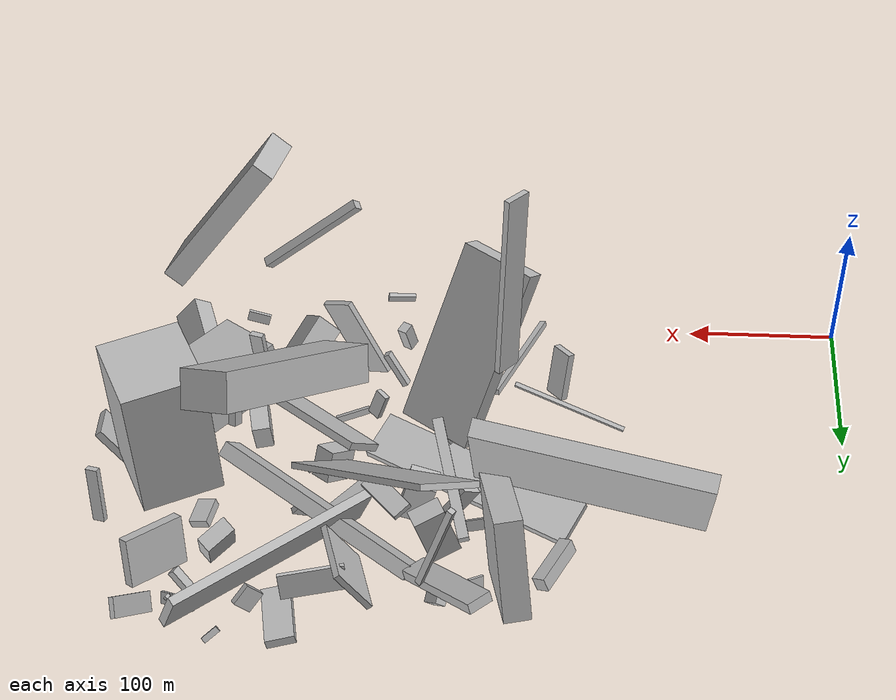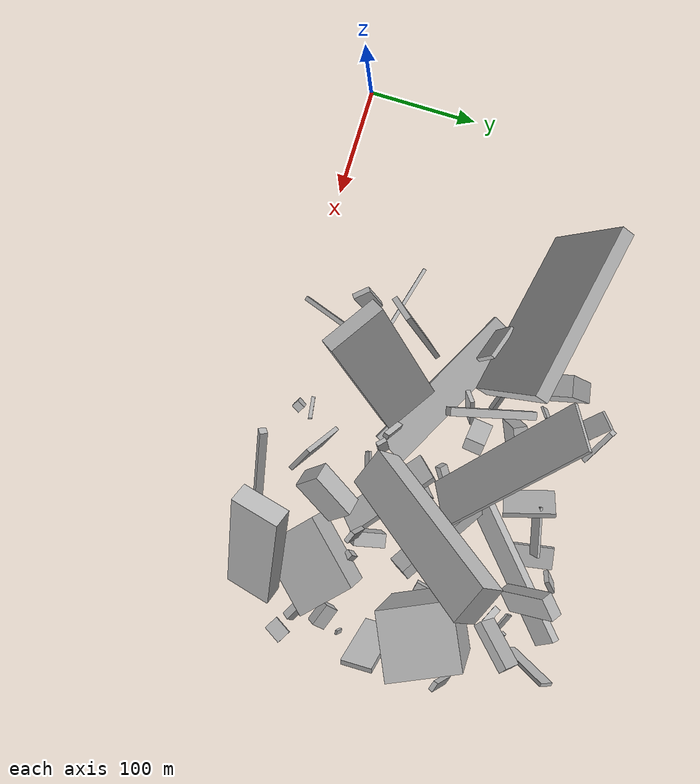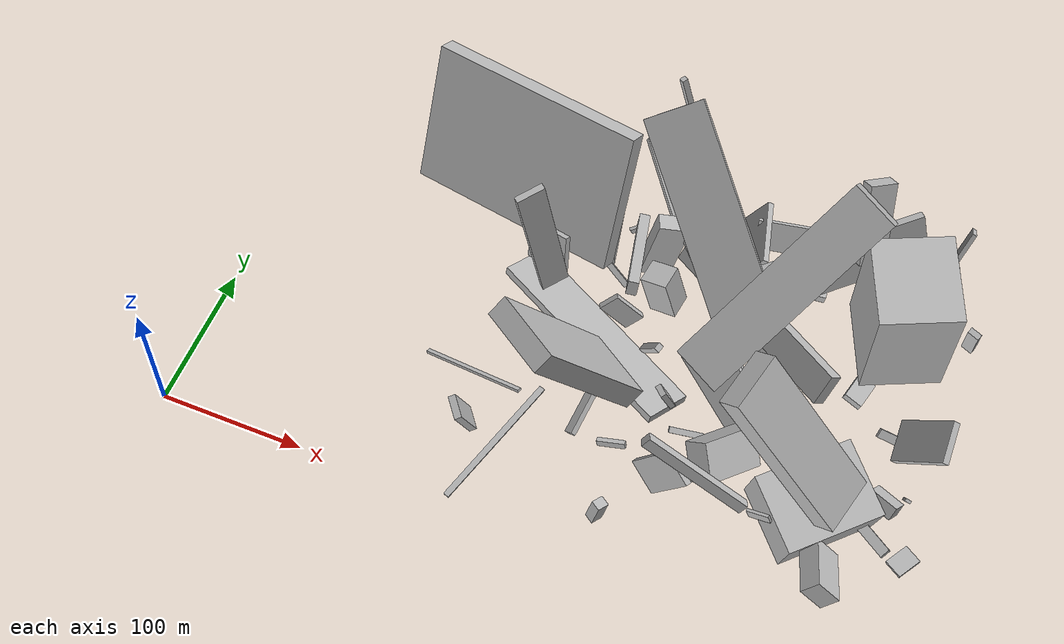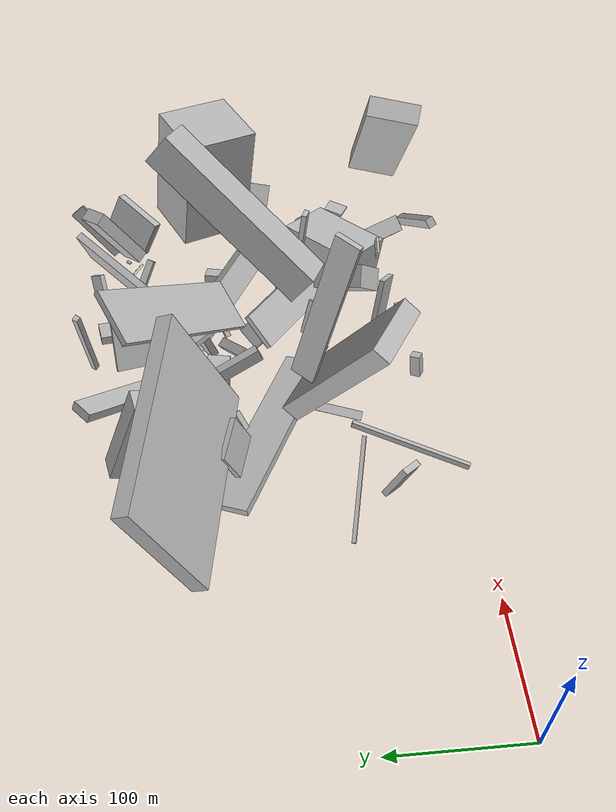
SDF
<sdf version="1.6">
 <world name="default">
  <model name="building_1">
   <static>0</static>
   <pose>401.5523927112124 54.036079059480755 28.276010431836145 -1.6262827580335213 -1.3107580423392562 -0.7069547826566642</pose>
   <link name="link">
    <gravity>0</gravity>
    <pose>0 0 33.5 0 0 0</pose>
    <collision name="collision"><geometry><box><size>34 52 67</size></box></geometry></collision>
    <visual name="visual">
     <cast_shadows>0</cast_shadows>
     <geometry><box><size>34 52 67</size></box></geometry>
     <material>
      <script>
       <uri>model://HANNAS_wall/materials/scripts</uri>
       <uri>model://HANNAS_wall/materials/textures</uri>
       <name>vrc/HANNAS_wall</name>
      </script>
     </material>
    </visual>
   </link>
  </model>
  <model name="building_4">
   <static>0</static>
   <pose>228.17869012197627 125.55638589533686 99.13003201223846 0.1654139263675401 0.09466595474658478 -0.6914889241852872</pose>
   <link name="link">
    <gravity>0</gravity>
    <pose>0 0 64.0 0 0 0</pose>
    <collision name="collision"><geometry><box><size>4 18 128</size></box></geometry></collision>
    <visual name="visual">
     <cast_shadows>0</cast_shadows>
     <geometry><box><size>4 18 128</size></box></geometry>
     <material>
      <script>
       <uri>model://HANNAS_wall/materials/scripts</uri>
       <uri>model://HANNAS_wall/materials/textures</uri>
       <name>vrc/HANNAS_wall</name>
      </script>
     </material>
    </visual>
   </link>
  </model>
  <model name="building_6">
   <static>0</static>
   <pose>407.4585912472862 150.6241460101338 39.54069528543751 1.7625428357951811 0.8658357117565957 -2.0084334795983896</pose>
   <link name="link">
    <gravity>0</gravity>
    <pose>0 0 75.0 0 0 0</pose>
    <collision name="collision"><geometry><box><size>22 10 150</size></box></geometry></collision>
    <visual name="visual">
     <cast_shadows>0</cast_shadows>
     <geometry><box><size>22 10 150</size></box></geometry>
     <material>
      <script>
       <uri>model://HANNAS_wall/materials/scripts</uri>
       <uri>model://HANNAS_wall/materials/textures</uri>
       <name>vrc/HANNAS_wall</name>
      </script>
     </material>
    </visual>
   </link>
  </model>
  <model name="building_8">
   <static>0</static>
   <pose>255.84433798821124 95.35408352351342 83.95009106457736 2.1371224104064597 -0.032799270551776775 -0.5828597156465631</pose>
   <link name="link">
    <gravity>0</gravity>
    <pose>0 0 7.5 0 0 0</pose>
    <collision name="collision"><geometry><box><size>51 126 15</size></box></geometry></collision>
    <visual name="visual">
     <cast_shadows>0</cast_shadows>
     <geometry><box><size>51 126 15</size></box></geometry>
     <material>
      <script>
       <uri>model://HANNAS_wall/materials/scripts</uri>
       <uri>model://HANNAS_wall/materials/textures</uri>
       <name>vrc/HANNAS_wall</name>
      </script>
     </material>
    </visual>
   </link>
  </model>
  <model name="building_22">
   <static>0</static>
   <pose>246.83429743823993 147.05973577493927 8.956918842114668 -0.22944183199776358 -0.008992836488864609 -0.48987932831853437</pose>
   <link name="link">
    <gravity>0</gravity>
    <pose>0 0 3.0 0 0 0</pose>
    <collision name="collision"><geometry><box><size>150 32 6</size></box></geometry></collision>
    <visual name="visual">
     <cast_shadows>0</cast_shadows>
     <geometry><box><size>150 32 6</size></box></geometry>
     <material>
      <script>
       <uri>model://HANNAS_wall/materials/scripts</uri>
       <uri>model://HANNAS_wall/materials/textures</uri>
       <name>vrc/HANNAS_wall</name>
      </script>
     </material>
    </visual>
   </link>
  </model>
  <model name="building_25">
   <static>0</static>
   <pose>318.8126764333156 219.92526281814506 101.15092016447481 2.190576327675683 -0.7795607426135756 -1.5544811991809708</pose>
   <link name="link">
    <gravity>0</gravity>
    <pose>0 0 21.0 0 0 0</pose>
    <collision name="collision"><geometry><box><size>4 150 42</size></box></geometry></collision>
    <visual name="visual">
     <cast_shadows>0</cast_shadows>
     <geometry><box><size>4 150 42</size></box></geometry>
     <material>
      <script>
       <uri>model://HANNAS_wall/materials/scripts</uri>
       <uri>model://HANNAS_wall/materials/textures</uri>
       <name>vrc/HANNAS_wall</name>
      </script>
     </material>
    </visual>
   </link>
  </model>
  <model name="building_33">
   <static>0</static>
   <pose>455.7886217580594 102.60628199560767 19.544798393776755 -1.6280594650465947 0.8171888531796426 -1.960991191095987</pose>
   <link name="link">
    <gravity>0</gravity>
    <pose>0 0 10.0 0 0 0</pose>
    <collision name="collision"><geometry><box><size>9 14 20</size></box></geometry></collision>
    <visual name="visual">
     <cast_shadows>0</cast_shadows>
     <geometry><box><size>9 14 20</size></box></geometry>
     <material>
      <script>
       <uri>model://HANNAS_wall/materials/scripts</uri>
       <uri>model://HANNAS_wall/materials/textures</uri>
       <name>vrc/HANNAS_wall</name>
      </script>
     </material>
    </visual>
   </link>
  </model>
  <model name="building_35">
   <static>0</static>
   <pose>322.10760045974797 240.39454420777062 37.82772973732747 -2.9354468873814645 -1.0583733223327632 0.09401110540814224</pose>
   <link name="link">
    <gravity>0</gravity>
    <pose>0 0 2.0 0 0 0</pose>
    <collision name="collision"><geometry><box><size>39 44 4</size></box></geometry></collision>
    <visual name="visual">
     <cast_shadows>0</cast_shadows>
     <geometry><box><size>39 44 4</size></box></geometry>
     <material>
      <script>
       <uri>model://HANNAS_wall/materials/scripts</uri>
       <uri>model://HANNAS_wall/materials/textures</uri>
       <name>vrc/HANNAS_wall</name>
      </script>
     </material>
    </visual>
   </link>
  </model>
  <model name="building_44">
   <static>0</static>
   <pose>437.65455058654993 187.28184264099127 62.38248355883496 0.00261766738097327 -0.10834398933520083 2.0069209695802566</pose>
   <link name="link">
    <gravity>0</gravity>
    <pose>0 0 45.5 0 0 0</pose>
    <collision name="collision"><geometry><box><size>57 52 91</size></box></geometry></collision>
    <visual name="visual">
     <cast_shadows>0</cast_shadows>
     <geometry><box><size>57 52 91</size></box></geometry>
     <material>
      <script>
       <uri>model://HANNAS_wall/materials/scripts</uri>
       <uri>model://HANNAS_wall/materials/textures</uri>
       <name>vrc/HANNAS_wall</name>
      </script>
     </material>
    </visual>
   </link>
  </model>
  <model name="building_47">
   <static>0</static>
   <pose>262.483425975196 173.59603297082438 18.35967282798807 2.906843778262975 0.9103403238811496 0.31924870117357085</pose>
   <link name="link">
    <gravity>0</gravity>
    <pose>0 0 7.5 0 0 0</pose>
    <collision name="collision"><geometry><box><size>29 4 15</size></box></geometry></collision>
    <visual name="visual">
     <cast_shadows>0</cast_shadows>
     <geometry><box><size>29 4 15</size></box></geometry>
     <material>
      <script>
       <uri>model://HANNAS_wall/materials/scripts</uri>
       <uri>model://HANNAS_wall/materials/textures</uri>
       <name>vrc/HANNAS_wall</name>
      </script>
     </material>
    </visual>
   </link>
  </model>
  <model name="building_48">
   <static>0</static>
   <pose>343.7332078227455 115.50055658258998 30.54460754928127 -0.12066962288144499 -0.8261246692175795 -2.166259265821095</pose>
   <link name="link">
    <gravity>0</gravity>
    <pose>0 0 15.0 0 0 0</pose>
    <collision name="collision"><geometry><box><size>5 83 30</size></box></geometry></collision>
    <visual name="visual">
     <cast_shadows>0</cast_shadows>
     <geometry><box><size>5 83 30</size></box></geometry>
     <material>
      <script>
       <uri>model://HANNAS_wall/materials/scripts</uri>
       <uri>model://HANNAS_wall/materials/textures</uri>
       <name>vrc/HANNAS_wall</name>
      </script>
     </material>
    </visual>
   </link>
  </model>
  <model name="building_54">
   <static>0</static>
   <pose>426.0401064589801 238.5923996086079 11.463200420233129 -2.4110656070231133 0.12562955732534437 -2.035138156353231</pose>
   <link name="link">
    <gravity>0</gravity>
    <pose>0 0 3.0 0 0 0</pose>
    <collision name="collision"><geometry><box><size>6 24 6</size></box></geometry></collision>
    <visual name="visual">
     <cast_shadows>0</cast_shadows>
     <geometry><box><size>6 24 6</size></box></geometry>
     <material>
      <script>
       <uri>model://HANNAS_wall/materials/scripts</uri>
       <uri>model://HANNAS_wall/materials/textures</uri>
       <name>vrc/HANNAS_wall</name>
      </script>
     </material>
    </visual>
   </link>
  </model>
  <model name="building_62">
   <static>0</static>
   <pose>385.70483982682134 110.84927908007953 60.38797494655334 0.0726300629908835 0.12162989719234074 -0.37731992142962223</pose>
   <link name="link">
    <gravity>0</gravity>
    <pose>0 0 21.0 0 0 0</pose>
    <collision name="collision"><geometry><box><size>9 4 42</size></box></geometry></collision>
    <visual name="visual">
     <cast_shadows>0</cast_shadows>
     <geometry><box><size>9 4 42</size></box></geometry>
     <material>
      <script>
       <uri>model://HANNAS_wall/materials/scripts</uri>
       <uri>model://HANNAS_wall/materials/textures</uri>
       <name>vrc/HANNAS_wall</name>
      </script>
     </material>
    </visual>
   </link>
  </model>
  <model name="building_63">
   <static>0</static>
   <pose>246.52924225113617 195.55076932814498 101.18943290998635 1.646576446952433 -0.43119676823016745 -1.80322904892218</pose>
   <link name="link">
    <gravity>0</gravity>
    <pose>0 0 75.0 0 0 0</pose>
    <collision name="collision"><geometry><box><size>12 99 150</size></box></geometry></collision>
    <visual name="visual">
     <cast_shadows>0</cast_shadows>
     <geometry><box><size>12 99 150</size></box></geometry>
     <material>
      <script>
       <uri>model://HANNAS_wall/materials/scripts</uri>
       <uri>model://HANNAS_wall/materials/textures</uri>
       <name>vrc/HANNAS_wall</name>
      </script>
     </material>
    </visual>
   </link>
  </model>
  <model name="building_64">
   <static>0</static>
   <pose>204.30791801875387 169.3236426557614 41.128675295167426 -0.33512342265169454 -0.21341822334581886 -0.31619897448257156</pose>
   <link name="link">
    <gravity>0</gravity>
    <pose>0 0 14.5 0 0 0</pose>
    <collision name="collision"><geometry><box><size>32 4 29</size></box></geometry></collision>
    <visual name="visual">
     <cast_shadows>0</cast_shadows>
     <geometry><box><size>32 4 29</size></box></geometry>
     <material>
      <script>
       <uri>model://HANNAS_wall/materials/scripts</uri>
       <uri>model://HANNAS_wall/materials/textures</uri>
       <name>vrc/HANNAS_wall</name>
      </script>
     </material>
    </visual>
   </link>
  </model>
  <model name="building_66">
   <static>0</static>
   <pose>301.60683240875255 201.1517540891328 60.749078507138464 -3.134523923734483 -0.2785828495704188 -2.4146996423829132</pose>
   <link name="link">
    <gravity>0</gravity>
    <pose>0 0 2.0 0 0 0</pose>
    <collision name="collision"><geometry><box><size>13 34 4</size></box></geometry></collision>
    <visual name="visual">
     <cast_shadows>0</cast_shadows>
     <geometry><box><size>13 34 4</size></box></geometry>
     <material>
      <script>
       <uri>model://HANNAS_wall/materials/scripts</uri>
       <uri>model://HANNAS_wall/materials/textures</uri>
       <name>vrc/HANNAS_wall</name>
      </script>
     </material>
    </visual>
   </link>
  </model>
  <model name="building_68">
   <static>0</static>
   <pose>240.70507803926466 192.09927568786836 22.423612211311614 1.0441341752526783 -0.5906981287490739 2.816656091166284</pose>
   <link name="link">
    <gravity>0</gravity>
    <pose>0 0 2.0 0 0 0</pose>
    <collision name="collision"><geometry><box><size>29 7 4</size></box></geometry></collision>
    <visual name="visual">
     <cast_shadows>0</cast_shadows>
     <geometry><box><size>29 7 4</size></box></geometry>
     <material>
      <script>
       <uri>model://HANNAS_wall/materials/scripts</uri>
       <uri>model://HANNAS_wall/materials/textures</uri>
       <name>vrc/HANNAS_wall</name>
      </script>
     </material>
    </visual>
   </link>
  </model>
  <model name="building_71">
   <static>0</static>
   <pose>332.2096381563065 109.97532413309195 82.76106830686967 0.9429857392917886 -0.3257920536015377 2.755988557222945</pose>
   <link name="link">
    <gravity>0</gravity>
    <pose>0 0 75.0 0 0 0</pose>
    <collision name="collision"><geometry><box><size>34 25 150</size></box></geometry></collision>
    <visual name="visual">
     <cast_shadows>0</cast_shadows>
     <geometry><box><size>34 25 150</size></box></geometry>
     <material>
      <script>
       <uri>model://HANNAS_wall/materials/scripts</uri>
       <uri>model://HANNAS_wall/materials/textures</uri>
       <name>vrc/HANNAS_wall</name>
      </script>
     </material>
    </visual>
   </link>
  </model>
  <model name="building_79">
   <static>0</static>
   <pose>444.4564148594882 45.1613883228408 103.38515640867823 -0.15334966617143608 0.5729789617016624 2.830693427702016</pose>
   <link name="link">
    <gravity>0</gravity>
    <pose>0 0 60.0 0 0 0</pose>
    <collision name="collision"><geometry><box><size>15 37 120</size></box></geometry></collision>
    <visual name="visual">
     <cast_shadows>0</cast_shadows>
     <geometry><box><size>15 37 120</size></box></geometry>
     <material>
      <script>
       <uri>model://HANNAS_wall/materials/scripts</uri>
       <uri>model://HANNAS_wall/materials/textures</uri>
       <name>vrc/HANNAS_wall</name>
      </script>
     </material>
    </visual>
   </link>
  </model>
  <model name="building_88">
   <static>0</static>
   <pose>456.3463042884102 259.2965416473673 58.69544090817611 2.2071033719061735 -1.152525604051407 -1.3765216476520516</pose>
   <link name="link">
    <gravity>0</gravity>
    <pose>0 0 21.0 0 0 0</pose>
    <collision name="collision"><geometry><box><size>32 7 42</size></box></geometry></collision>
    <visual name="visual">
     <cast_shadows>0</cast_shadows>
     <geometry><box><size>32 7 42</size></box></geometry>
     <material>
      <script>
       <uri>model://HANNAS_wall/materials/scripts</uri>
       <uri>model://HANNAS_wall/materials/textures</uri>
       <name>vrc/HANNAS_wall</name>
      </script>
     </material>
    </visual>
   </link>
  </model>
  <model name="building_89">
   <static>0</static>
   <pose>342.25140812685754 101.60179613858372 14.435974471599081 -1.3485258826676871 -0.4761052619405995 1.7334654703235495</pose>
   <link name="link">
    <gravity>0</gravity>
    <pose>0 0 11.5 0 0 0</pose>
    <collision name="collision"><geometry><box><size>4 4 23</size></box></geometry></collision>
    <visual name="visual">
     <cast_shadows>0</cast_shadows>
     <geometry><box><size>4 4 23</size></box></geometry>
     <material>
      <script>
       <uri>model://HANNAS_wall/materials/scripts</uri>
       <uri>model://HANNAS_wall/materials/textures</uri>
       <name>vrc/HANNAS_wall</name>
      </script>
     </material>
    </visual>
   </link>
  </model>
  <model name="building_90">
   <static>0</static>
   <pose>375.2456861172891 234.0198272110953 39.999909392299486 -2.912081252389361 1.2014815166298745 -0.6362682034279783</pose>
   <link name="link">
    <gravity>0</gravity>
    <pose>0 0 3.0 0 0 0</pose>
    <collision name="collision"><geometry><box><size>36 150 6</size></box></geometry></collision>
    <visual name="visual">
     <cast_shadows>0</cast_shadows>
     <geometry><box><size>36 150 6</size></box></geometry>
     <material>
      <script>
       <uri>model://HANNAS_wall/materials/scripts</uri>
       <uri>model://HANNAS_wall/materials/textures</uri>
       <name>vrc/HANNAS_wall</name>
      </script>
     </material>
    </visual>
   </link>
  </model>
  <model name="building_91">
   <static>0</static>
   <pose>219.94579322952325 255.52894919669794 55.923452049077284 1.9263853605745411 0.03474488821453532 0.19867803928889713</pose>
   <link name="link">
    <gravity>0</gravity>
    <pose>0 0 31.5 0 0 0</pose>
    <collision name="collision"><geometry><box><size>18 73 63</size></box></geometry></collision>
    <visual name="visual">
     <cast_shadows>0</cast_shadows>
     <geometry><box><size>18 73 63</size></box></geometry>
     <material>
      <script>
       <uri>model://HANNAS_wall/materials/scripts</uri>
       <uri>model://HANNAS_wall/materials/textures</uri>
       <name>vrc/HANNAS_wall</name>
      </script>
     </material>
    </visual>
   </link>
  </model>
  <model name="building_92">
   <static>0</static>
   <pose>401.903777154066 254.43615798046574 84.09249106973095 2.033854022043411 -0.2708171890643756 -2.4038582705777247</pose>
   <link name="link">
    <gravity>0</gravity>
    <pose>0 0 5.0 0 0 0</pose>
    <collision name="collision"><geometry><box><size>20 57 10</size></box></geometry></collision>
    <visual name="visual">
     <cast_shadows>0</cast_shadows>
     <geometry><box><size>20 57 10</size></box></geometry>
     <material>
      <script>
       <uri>model://HANNAS_wall/materials/scripts</uri>
       <uri>model://HANNAS_wall/materials/textures</uri>
       <name>vrc/HANNAS_wall</name>
      </script>
     </material>
    </visual>
   </link>
  </model>
  <model name="building_95">
   <static>0</static>
   <pose>283.24605566816837 191.1878937028001 38.9009379998721 1.6128154147787748 -0.2357029108980094 -0.12877088685354252</pose>
   <link name="link">
    <gravity>0</gravity>
    <pose>0 0 8.5 0 0 0</pose>
    <collision name="collision"><geometry><box><size>19 33 17</size></box></geometry></collision>
    <visual name="visual">
     <cast_shadows>0</cast_shadows>
     <geometry><box><size>19 33 17</size></box></geometry>
     <material>
      <script>
       <uri>model://HANNAS_wall/materials/scripts</uri>
       <uri>model://HANNAS_wall/materials/textures</uri>
       <name>vrc/HANNAS_wall</name>
      </script>
     </material>
    </visual>
   </link>
  </model>
  <model name="building_97">
   <static>0</static>
   <pose>267.0699704288968 275.1335319181406 103.35628474804531 -2.048152595103247 -1.2984742276065053 2.9880316972899457</pose>
   <link name="link">
    <gravity>0</gravity>
    <pose>0 0 2.0 0 0 0</pose>
    <collision name="collision"><geometry><box><size>77 4 4</size></box></geometry></collision>
    <visual name="visual">
     <cast_shadows>0</cast_shadows>
     <geometry><box><size>77 4 4</size></box></geometry>
     <material>
      <script>
       <uri>model://HANNAS_wall/materials/scripts</uri>
       <uri>model://HANNAS_wall/materials/textures</uri>
       <name>vrc/HANNAS_wall</name>
      </script>
     </material>
    </visual>
   </link>
  </model>
  <model name="building_100">
   <static>0</static>
   <pose>221.91355019414289 43.489029411065594 18.566696221605696 1.3189146381726775 0.2344433811393635 -1.9215647651249672</pose>
   <link name="link">
    <gravity>0</gravity>
    <pose>0 0 2.0 0 0 0</pose>
    <collision name="collision"><geometry><box><size>93 4 4</size></box></geometry></collision>
    <visual name="visual">
     <cast_shadows>0</cast_shadows>
     <geometry><box><size>93 4 4</size></box></geometry>
     <material>
      <script>
       <uri>model://HANNAS_wall/materials/scripts</uri>
       <uri>model://HANNAS_wall/materials/textures</uri>
       <name>vrc/HANNAS_wall</name>
      </script>
     </material>
    </visual>
   </link>
  </model>
  <model name="building_104">
   <static>0</static>
   <pose>390.94828108683663 28.439659153981044 88.75951367055427 -0.4877125378095932 -0.7717038134458264 0.7432010482865</pose>
   <link name="link">
    <gravity>0</gravity>
    <pose>0 0 40.0 0 0 0</pose>
    <collision name="collision"><geometry><box><size>7 6 80</size></box></geometry></collision>
    <visual name="visual">
     <cast_shadows>0</cast_shadows>
     <geometry><box><size>7 6 80</size></box></geometry>
     <material>
      <script>
       <uri>model://HANNAS_wall/materials/scripts</uri>
       <uri>model://HANNAS_wall/materials/textures</uri>
       <name>vrc/HANNAS_wall</name>
      </script>
     </material>
    </visual>
   </link>
  </model>
  <model name="building_107">
   <static>0</static>
   <pose>282.11127247751904 234.60121358294484 28.71746233364309 -0.09137404149312058 1.1022167250580759 2.2021808461702816</pose>
   <link name="link">
    <gravity>0</gravity>
    <pose>0 0 36.0 0 0 0</pose>
    <collision name="collision"><geometry><box><size>7 17 72</size></box></geometry></collision>
    <visual name="visual">
     <cast_shadows>0</cast_shadows>
     <geometry><box><size>7 17 72</size></box></geometry>
     <material>
      <script>
       <uri>model://HANNAS_wall/materials/scripts</uri>
       <uri>model://HANNAS_wall/materials/textures</uri>
       <name>vrc/HANNAS_wall</name>
      </script>
     </material>
    </visual>
   </link>
  </model>
  <model name="building_113">
   <static>0</static>
   <pose>356.4210451000569 173.24468996572386 12.141433528414993 -1.8444374980593716 -0.6588562107131558 0.5048268383937032</pose>
   <link name="link">
    <gravity>0</gravity>
    <pose>0 0 2.0 0 0 0</pose>
    <collision name="collision"><geometry><box><size>16 14 4</size></box></geometry></collision>
    <visual name="visual">
     <cast_shadows>0</cast_shadows>
     <geometry><box><size>16 14 4</size></box></geometry>
     <material>
      <script>
       <uri>model://HANNAS_wall/materials/scripts</uri>
       <uri>model://HANNAS_wall/materials/textures</uri>
       <name>vrc/HANNAS_wall</name>
      </script>
     </material>
    </visual>
   </link>
  </model>
  <model name="building_115">
   <static>0</static>
   <pose>315.9784656247084 104.10030043317326 38.809826641255384 -1.6954143861028885 -0.3574071462531633 0.83935980852533</pose>
   <link name="link">
    <gravity>0</gravity>
    <pose>0 0 4.5 0 0 0</pose>
    <collision name="collision"><geometry><box><size>4 18 9</size></box></geometry></collision>
    <visual name="visual">
     <cast_shadows>0</cast_shadows>
     <geometry><box><size>4 18 9</size></box></geometry>
     <material>
      <script>
       <uri>model://HANNAS_wall/materials/scripts</uri>
       <uri>model://HANNAS_wall/materials/textures</uri>
       <name>vrc/HANNAS_wall</name>
      </script>
     </material>
    </visual>
   </link>
  </model>
  <model name="building_122">
   <static>0</static>
   <pose>291.4177001522677 42.817681656320666 74.12040698983304 -1.4102061231542597 -0.09638725125106426 -1.4203218271467237</pose>
   <link name="link">
    <gravity>0</gravity>
    <pose>0 0 9.0 0 0 0</pose>
    <collision name="collision"><geometry><box><size>3 5 18</size></box></geometry></collision>
    <visual name="visual">
     <cast_shadows>0</cast_shadows>
     <geometry><box><size>3 5 18</size></box></geometry>
     <material>
      <script>
       <uri>model://HANNAS_wall/materials/scripts</uri>
       <uri>model://HANNAS_wall/materials/textures</uri>
       <name>vrc/HANNAS_wall</name>
      </script>
     </material>
    </visual>
   </link>
  </model>
  <model name="building_131">
   <static>0</static>
   <pose>364.80389482495366 257.35067336065634 36.20032074786067 1.5377277660532274 -0.1156661349289333 -1.355024134001474</pose>
   <link name="link">
    <gravity>0</gravity>
    <pose>0 0 21.0 0 0 0</pose>
    <collision name="collision"><geometry><box><size>2 29 42</size></box></geometry></collision>
    <visual name="visual">
     <cast_shadows>0</cast_shadows>
     <geometry><box><size>2 29 42</size></box></geometry>
     <material>
      <script>
       <uri>model://HANNAS_wall/materials/scripts</uri>
       <uri>model://HANNAS_wall/materials/textures</uri>
       <name>vrc/HANNAS_wall</name>
      </script>
     </material>
    </visual>
   </link>
  </model>
  <model name="building_138">
   <static>0</static>
   <pose>431.6074012694253 246.53061262785684 9.100115080143755 2.863790182299562 0.5828303883423326 -2.13735268662952</pose>
   <link name="link">
    <gravity>0</gravity>
    <pose>0 0 4.0 0 0 0</pose>
    <collision name="collision"><geometry><box><size>2 25 8</size></box></geometry></collision>
    <visual name="visual">
     <cast_shadows>0</cast_shadows>
     <geometry><box><size>2 25 8</size></box></geometry>
     <material>
      <script>
       <uri>model://HANNAS_wall/materials/scripts</uri>
       <uri>model://HANNAS_wall/materials/textures</uri>
       <name>vrc/HANNAS_wall</name>
      </script>
     </material>
    </visual>
   </link>
  </model>
  <model name="building_139">
   <static>0</static>
   <pose>367.6848643310064 256.7644202637931 7.96717041741698 2.9867567134800574 0.049650289794929255 -1.4036656172144375</pose>
   <link name="link">
    <gravity>0</gravity>
    <pose>0 0 3.5 0 0 0</pose>
    <collision name="collision"><geometry><box><size>42 19 7</size></box></geometry></collision>
    <visual name="visual">
     <cast_shadows>0</cast_shadows>
     <geometry><box><size>42 19 7</size></box></geometry>
     <material>
      <script>
       <uri>model://HANNAS_wall/materials/scripts</uri>
       <uri>model://HANNAS_wall/materials/textures</uri>
       <name>vrc/HANNAS_wall</name>
      </script>
     </material>
    </visual>
   </link>
  </model>
  <model name="building_151">
   <static>0</static>
   <pose>185.9431848112661 88.97032249782902 17.741237805405454 0.9212573285755056 1.173926209507258 -0.9095790156529379</pose>
   <link name="link">
    <gravity>0</gravity>
    <pose>0 0 1.5 0 0 0</pose>
    <collision name="collision"><geometry><box><size>2 80 3</size></box></geometry></collision>
    <visual name="visual">
     <cast_shadows>0</cast_shadows>
     <geometry><box><size>2 80 3</size></box></geometry>
     <material>
      <script>
       <uri>model://HANNAS_wall/materials/scripts</uri>
       <uri>model://HANNAS_wall/materials/textures</uri>
       <name>vrc/HANNAS_wall</name>
      </script>
     </material>
    </visual>
   </link>
  </model>
  <model name="building_154">
   <static>0</static>
   <pose>243.02945133340498 237.06429880074265 14.250526666912737 2.491766434739092 1.1203490154610902 1.5618780908103835</pose>
   <link name="link">
    <gravity>0</gravity>
    <pose>0 0 1.0 0 0 0</pose>
    <collision name="collision"><geometry><box><size>13 11 2</size></box></geometry></collision>
    <visual name="visual">
     <cast_shadows>0</cast_shadows>
     <geometry><box><size>13 11 2</size></box></geometry>
     <material>
      <script>
       <uri>model://HANNAS_wall/materials/scripts</uri>
       <uri>model://HANNAS_wall/materials/textures</uri>
       <name>vrc/HANNAS_wall</name>
      </script>
     </material>
    </visual>
   </link>
  </model>
  <model name="building_156">
   <static>0</static>
   <pose>481.37463823774885 213.91511153024882 43.06259043059769 0.27168931620408365 0.14522618216661531 -0.31460444434448076</pose>
   <link name="link">
    <gravity>0</gravity>
    <pose>0 0 19.0 0 0 0</pose>
    <collision name="collision"><geometry><box><size>8 4 38</size></box></geometry></collision>
    <visual name="visual">
     <cast_shadows>0</cast_shadows>
     <geometry><box><size>8 4 38</size></box></geometry>
     <material>
      <script>
       <uri>model://HANNAS_wall/materials/scripts</uri>
       <uri>model://HANNAS_wall/materials/textures</uri>
       <name>vrc/HANNAS_wall</name>
      </script>
     </material>
    </visual>
   </link>
  </model>
  <model name="building_160">
   <static>0</static>
   <pose>437.33975522370076 252.72696403577157 14.630384280176694 0.4699609436946378 0.3271740443144368 -2.039919631058086</pose>
   <link name="link">
    <gravity>0</gravity>
    <pose>0 0 1.0 0 0 0</pose>
    <collision name="collision"><geometry><box><size>4 2 2</size></box></geometry></collision>
    <visual name="visual">
     <cast_shadows>0</cast_shadows>
     <geometry><box><size>4 2 2</size></box></geometry>
     <material>
      <script>
       <uri>model://HANNAS_wall/materials/scripts</uri>
       <uri>model://HANNAS_wall/materials/textures</uri>
       <name>vrc/HANNAS_wall</name>
      </script>
     </material>
    </visual>
   </link>
  </model>
  <model name="building_163">
   <static>0</static>
   <pose>488.7525567692324 65.57457983777196 16.45675895075285 0.008090739360401415 -0.04771225008416682 1.0325769487880716</pose>
   <link name="link">
    <gravity>0</gravity>
    <pose>0 0 1.0 0 0 0</pose>
    <collision name="collision"><geometry><box><size>17 13 2</size></box></geometry></collision>
    <visual name="visual">
     <cast_shadows>0</cast_shadows>
     <geometry><box><size>17 13 2</size></box></geometry>
     <material>
      <script>
       <uri>model://HANNAS_wall/materials/scripts</uri>
       <uri>model://HANNAS_wall/materials/textures</uri>
       <name>vrc/HANNAS_wall</name>
      </script>
     </material>
    </visual>
   </link>
  </model>
  <model name="building_164">
   <static>0</static>
   <pose>357.6350536907961 138.12567519973672 4.587823534768024 1.7312440196799719 -0.5618702441368439 -0.6964287593378304</pose>
   <link name="link">
    <gravity>0</gravity>
    <pose>0 0 1.0 0 0 0</pose>
    <collision name="collision"><geometry><box><size>3 7 2</size></box></geometry></collision>
    <visual name="visual">
     <cast_shadows>0</cast_shadows>
     <geometry><box><size>3 7 2</size></box></geometry>
     <material>
      <script>
       <uri>model://HANNAS_wall/materials/scripts</uri>
       <uri>model://HANNAS_wall/materials/textures</uri>
       <name>vrc/HANNAS_wall</name>
      </script>
     </material>
    </visual>
   </link>
  </model>
  <model name="building_165">
   <static>0</static>
   <pose>299.76124960943156 115.99836045579231 81.25015869274701 -1.8698399262271208 0.9582849005282619 2.6090314656568885</pose>
   <link name="link">
    <gravity>0</gravity>
    <pose>0 0 2.5 0 0 0</pose>
    <collision name="collision"><geometry><box><size>25 4 5</size></box></geometry></collision>
    <visual name="visual">
     <cast_shadows>0</cast_shadows>
     <geometry><box><size>25 4 5</size></box></geometry>
     <material>
      <script>
       <uri>model://HANNAS_wall/materials/scripts</uri>
       <uri>model://HANNAS_wall/materials/textures</uri>
       <name>vrc/HANNAS_wall</name>
      </script>
     </material>
    </visual>
   </link>
  </model>
  <model name="building_166">
   <static>0</static>
   <pose>339.92842051041225 47.21863584332767 38.97226294702808 -0.09902891404593016 -1.0744456296540177 -0.43362935834340327</pose>
   <link name="link">
    <gravity>0</gravity>
    <pose>0 0 12.0 0 0 0</pose>
    <collision name="collision"><geometry><box><size>60 4 24</size></box></geometry></collision>
    <visual name="visual">
     <cast_shadows>0</cast_shadows>
     <geometry><box><size>60 4 24</size></box></geometry>
     <material>
      <script>
       <uri>model://HANNAS_wall/materials/scripts</uri>
       <uri>model://HANNAS_wall/materials/textures</uri>
       <name>vrc/HANNAS_wall</name>
      </script>
     </material>
    </visual>
   </link>
  </model>
  <model name="building_171">
   <static>0</static>
   <pose>407.7536237540046 273.1182487626593 5.7070745772212055 0.7573152476785341 -0.49696313201584214 -2.593106429393954</pose>
   <link name="link">
    <gravity>0</gravity>
    <pose>0 0 1.0 0 0 0</pose>
    <collision name="collision"><geometry><box><size>12 4 2</size></box></geometry></collision>
    <visual name="visual">
     <cast_shadows>0</cast_shadows>
     <geometry><box><size>12 4 2</size></box></geometry>
     <material>
      <script>
       <uri>model://HANNAS_wall/materials/scripts</uri>
       <uri>model://HANNAS_wall/materials/textures</uri>
       <name>vrc/HANNAS_wall</name>
      </script>
     </material>
    </visual>
   </link>
  </model>
  <model name="building_175">
   <static>0</static>
   <pose>323.82504968238027 170.61123385035734 16.828745438001015 -0.6938865614347485 0.9056526382899315 -1.5613848854842771</pose>
   <link name="link">
    <gravity>0</gravity>
    <pose>0 0 4.0 0 0 0</pose>
    <collision name="collision"><geometry><box><size>7 32 8</size></box></geometry></collision>
    <visual name="visual">
     <cast_shadows>0</cast_shadows>
     <geometry><box><size>7 32 8</size></box></geometry>
     <material>
      <script>
       <uri>model://HANNAS_wall/materials/scripts</uri>
       <uri>model://HANNAS_wall/materials/textures</uri>
       <name>vrc/HANNAS_wall</name>
      </script>
     </material>
    </visual>
   </link>
  </model>
  <model name="building_176">
   <static>0</static>
   <pose>189.9987114406887 50.23030093951226 33.84173180537487 2.8391130823421316 -0.19040718948732552 2.2562106307398047</pose>
   <link name="link">
    <gravity>0</gravity>
    <pose>0 0 17.5 0 0 0</pose>
    <collision name="collision"><geometry><box><size>16 5 35</size></box></geometry></collision>
    <visual name="visual">
     <cast_shadows>0</cast_shadows>
     <geometry><box><size>16 5 35</size></box></geometry>
     <material>
      <script>
       <uri>model://HANNAS_wall/materials/scripts</uri>
       <uri>model://HANNAS_wall/materials/textures</uri>
       <name>vrc/HANNAS_wall</name>
      </script>
     </material>
    </visual>
   </link>
  </model>
  <model name="building_177">
   <static>0</static>
   <pose>452.0286407502335 275.8816625547951 39.244618815497645 2.016766765254949 -0.823032165966262 1.1766031760374545</pose>
   <link name="link">
    <gravity>0</gravity>
    <pose>0 0 1.5 0 0 0</pose>
    <collision name="collision"><geometry><box><size>51 13 3</size></box></geometry></collision>
    <visual name="visual">
     <cast_shadows>0</cast_shadows>
     <geometry><box><size>51 13 3</size></box></geometry>
     <material>
      <script>
       <uri>model://HANNAS_wall/materials/scripts</uri>
       <uri>model://HANNAS_wall/materials/textures</uri>
       <name>vrc/HANNAS_wall</name>
      </script>
     </material>
    </visual>
   </link>
  </model>
  <model name="building_192">
   <static>0</static>
   <pose>397.2353708310876 43.86120984093147 55.967311079363114 -3.0449751902551183 -0.25758415769369747 -0.0640346635304614</pose>
   <link name="link">
    <gravity>0</gravity>
    <pose>0 0 4.0 0 0 0</pose>
    <collision name="collision"><geometry><box><size>15 2 8</size></box></geometry></collision>
    <visual name="visual">
     <cast_shadows>0</cast_shadows>
     <geometry><box><size>15 2 8</size></box></geometry>
     <material>
      <script>
       <uri>model://HANNAS_wall/materials/scripts</uri>
       <uri>model://HANNAS_wall/materials/textures</uri>
       <name>vrc/HANNAS_wall</name>
      </script>
     </material>
    </visual>
   </link>
  </model>
  <model name="building_195">
   <static>0</static>
   <pose>192.51913128074148 222.47976343849905 15.06412796407835 -0.018476993175028586 -0.40957789116588617 2.6693133748278677</pose>
   <link name="link">
    <gravity>0</gravity>
    <pose>0 0 5.0 0 0 0</pose>
    <collision name="collision"><geometry><box><size>9 37 10</size></box></geometry></collision>
    <visual name="visual">
     <cast_shadows>0</cast_shadows>
     <geometry><box><size>9 37 10</size></box></geometry>
     <material>
      <script>
       <uri>model://HANNAS_wall/materials/scripts</uri>
       <uri>model://HANNAS_wall/materials/textures</uri>
       <name>vrc/HANNAS_wall</name>
      </script>
     </material>
    </visual>
   </link>
  </model>
  <model name="building_201">
   <static>0</static>
   <pose>267.1394031645361 235.95578186465 9.699473162468339 2.204768992604615 -0.6201823354356303 2.4873466105561217</pose>
   <link name="link">
    <gravity>0</gravity>
    <pose>0 0 5.0 0 0 0</pose>
    <collision name="collision"><geometry><box><size>12 8 10</size></box></geometry></collision>
    <visual name="visual">
     <cast_shadows>0</cast_shadows>
     <geometry><box><size>12 8 10</size></box></geometry>
     <material>
      <script>
       <uri>model://HANNAS_wall/materials/scripts</uri>
       <uri>model://HANNAS_wall/materials/textures</uri>
       <name>vrc/HANNAS_wall</name>
      </script>
     </material>
    </visual>
   </link>
  </model>
  <model name="building_205">
   <static>0</static>
   <pose>454.41123347882814 145.46470897601358 11.487459100186449 -0.8226818624514596 0.6392060006530853 0.2850223024803235</pose>
   <link name="link">
    <gravity>0</gravity>
    <pose>0 0 3.0 0 0 0</pose>
    <collision name="collision"><geometry><box><size>22 2 6</size></box></geometry></collision>
    <visual name="visual">
     <cast_shadows>0</cast_shadows>
     <geometry><box><size>22 2 6</size></box></geometry>
     <material>
      <script>
       <uri>model://HANNAS_wall/materials/scripts</uri>
       <uri>model://HANNAS_wall/materials/textures</uri>
       <name>vrc/HANNAS_wall</name>
      </script>
     </material>
    </visual>
   </link>
  </model>
  <model name="building_206">
   <static>0</static>
   <pose>357.802184569926 83.27380533799655 62.279726110216984 -2.3655510775816415 -0.4402644083024298 -2.146396614148032</pose>
   <link name="link">
    <gravity>0</gravity>
    <pose>0 0 13.0 0 0 0</pose>
    <collision name="collision"><geometry><box><size>44 18 26</size></box></geometry></collision>
    <visual name="visual">
     <cast_shadows>0</cast_shadows>
     <geometry><box><size>44 18 26</size></box></geometry>
     <material>
      <script>
       <uri>model://HANNAS_wall/materials/scripts</uri>
       <uri>model://HANNAS_wall/materials/textures</uri>
       <name>vrc/HANNAS_wall</name>
      </script>
     </material>
    </visual>
   </link>
  </model>
  <model name="building_207">
   <static>0</static>
   <pose>440.6530729350814 86.77893602284347 14.16061059957353 -1.1708292390701467 0.1551420209935228 -0.507009493044207</pose>
   <link name="link">
    <gravity>0</gravity>
    <pose>0 0 3.5 0 0 0</pose>
    <collision name="collision"><geometry><box><size>80 11 7</size></box></geometry></collision>
    <visual name="visual">
     <cast_shadows>0</cast_shadows>
     <geometry><box><size>80 11 7</size></box></geometry>
     <material>
      <script>
       <uri>model://HANNAS_wall/materials/scripts</uri>
       <uri>model://HANNAS_wall/materials/textures</uri>
       <name>vrc/HANNAS_wall</name>
      </script>
     </material>
    </visual>
   </link>
  </model>
  <model name="building_211">
   <static>0</static>
   <pose>251.44209583222874 223.68100673840274 45.44397473092805 0.3259039313490857 -1.151697157843985 1.4810855790032476</pose>
   <link name="link">
    <gravity>0</gravity>
    <pose>0 0 40.0 0 0 0</pose>
    <collision name="collision"><geometry><box><size>10 7 80</size></box></geometry></collision>
    <visual name="visual">
     <cast_shadows>0</cast_shadows>
     <geometry><box><size>10 7 80</size></box></geometry>
     <material>
      <script>
       <uri>model://HANNAS_wall/materials/scripts</uri>
       <uri>model://HANNAS_wall/materials/textures</uri>
       <name>vrc/HANNAS_wall</name>
      </script>
     </material>
    </visual>
   </link>
  </model>
  <model name="building_217">
   <static>0</static>
   <pose>422.2054183416696 168.15957705759934 5.203829781729017 -1.5751698158355616 0.294293370682362 -0.21082911207444938</pose>
   <link name="link">
    <gravity>0</gravity>
    <pose>0 0 9.5 0 0 0</pose>
    <collision name="collision"><geometry><box><size>13 6 19</size></box></geometry></collision>
    <visual name="visual">
     <cast_shadows>0</cast_shadows>
     <geometry><box><size>13 6 19</size></box></geometry>
     <material>
      <script>
       <uri>model://HANNAS_wall/materials/scripts</uri>
       <uri>model://HANNAS_wall/materials/textures</uri>
       <name>vrc/HANNAS_wall</name>
      </script>
     </material>
    </visual>
   </link>
  </model>
  <model name="building_220">
   <static>0</static>
   <pose>261.4904770873336 98.38110712569255 15.480834646162725 2.7445493351150416 0.6213059712855331 2.782993271500608</pose>
   <link name="link">
    <gravity>0</gravity>
    <pose>0 0 2.0 0 0 0</pose>
    <collision name="collision"><geometry><box><size>7 51 4</size></box></geometry></collision>
    <visual name="visual">
     <cast_shadows>0</cast_shadows>
     <geometry><box><size>7 51 4</size></box></geometry>
     <material>
      <script>
       <uri>model://HANNAS_wall/materials/scripts</uri>
       <uri>model://HANNAS_wall/materials/textures</uri>
       <name>vrc/HANNAS_wall</name>
      </script>
     </material>
    </visual>
   </link>
  </model>
  <model name="building_224">
   <static>0</static>
   <pose>345.9967131440128 141.78000448148893 23.082609231403733 -1.3445254201081418 -0.4837754829850136 0.737503611700572</pose>
   <link name="link">
    <gravity>0</gravity>
    <pose>0 0 7.5 0 0 0</pose>
    <collision name="collision"><geometry><box><size>20 21 15</size></box></geometry></collision>
    <visual name="visual">
     <cast_shadows>0</cast_shadows>
     <geometry><box><size>20 21 15</size></box></geometry>
     <material>
      <script>
       <uri>model://HANNAS_wall/materials/scripts</uri>
       <uri>model://HANNAS_wall/materials/textures</uri>
       <name>vrc/HANNAS_wall</name>
      </script>
     </material>
    </visual>
   </link>
  </model>
  <model name="building_227">
   <static>0</static>
   <pose>450.6366269938841 34.74793907435118 18.918499411009687 0.22476674722263254 0.677546602184901 -2.66040362448409</pose>
   <link name="link">
    <gravity>0</gravity>
    <pose>0 0 11.0 0 0 0</pose>
    <collision name="collision"><geometry><box><size>14 34 22</size></box></geometry></collision>
    <visual name="visual">
     <cast_shadows>0</cast_shadows>
     <geometry><box><size>14 34 22</size></box></geometry>
     <material>
      <script>
       <uri>model://HANNAS_wall/materials/scripts</uri>
       <uri>model://HANNAS_wall/materials/textures</uri>
       <name>vrc/HANNAS_wall</name>
      </script>
     </material>
    </visual>
   </link>
  </model>
  <model name="building_229">
   <static>0</static>
   <pose>477.2069494186165 130.8815699745309 25.818487902986305 1.1942603787201893 -0.6283405770421938 -2.84267674550611</pose>
   <link name="link">
    <gravity>0</gravity>
    <pose>0 0 14.0 0 0 0</pose>
    <collision name="collision"><geometry><box><size>5 51 28</size></box></geometry></collision>
    <visual name="visual">
     <cast_shadows>0</cast_shadows>
     <geometry><box><size>5 51 28</size></box></geometry>
     <material>
      <script>
       <uri>model://HANNAS_wall/materials/scripts</uri>
       <uri>model://HANNAS_wall/materials/textures</uri>
       <name>vrc/HANNAS_wall</name>
      </script>
     </material>
    </visual>
   </link>
  </model>
  <model name="building_230">
   <static>0</static>
   <pose>296.98152325818097 22.071789052207116 17.981647387820768 1.7539781315017422 -0.1250261807236923 2.5807001758051085</pose>
   <link name="link">
    <gravity>0</gravity>
    <pose>0 0 4.0 0 0 0</pose>
    <collision name="collision"><geometry><box><size>7 19 8</size></box></geometry></collision>
    <visual name="visual">
     <cast_shadows>0</cast_shadows>
     <geometry><box><size>7 19 8</size></box></geometry>
     <material>
      <script>
       <uri>model://HANNAS_wall/materials/scripts</uri>
       <uri>model://HANNAS_wall/materials/textures</uri>
       <name>vrc/HANNAS_wall</name>
      </script>
     </material>
    </visual>
   </link>
  </model>
  <model name="building_231">
   <static>0</static>
   <pose>385.6020969770207 274.44064129278337 51.99482122782199 2.8052060692719913 -0.5946372680453508 -2.3485431535444232</pose>
   <link name="link">
    <gravity>0</gravity>
    <pose>0 0 7.0 0 0 0</pose>
    <collision name="collision"><geometry><box><size>14 4 14</size></box></geometry></collision>
    <visual name="visual">
     <cast_shadows>0</cast_shadows>
     <geometry><box><size>14 4 14</size></box></geometry>
     <material>
      <script>
       <uri>model://HANNAS_wall/materials/scripts</uri>
       <uri>model://HANNAS_wall/materials/textures</uri>
       <name>vrc/HANNAS_wall</name>
      </script>
     </material>
    </visual>
   </link>
  </model>
  <model name="building_235">
   <static>0</static>
   <pose>478.87868879583374 113.75208551649749 4.365273497567344 2.741278101192474 0.4548156428429939 -1.7526325061197587</pose>
   <link name="link">
    <gravity>0</gravity>
    <pose>0 0 3.5 0 0 0</pose>
    <collision name="collision"><geometry><box><size>2 4 7</size></box></geometry></collision>
    <visual name="visual">
     <cast_shadows>0</cast_shadows>
     <geometry><box><size>2 4 7</size></box></geometry>
     <material>
      <script>
       <uri>model://HANNAS_wall/materials/scripts</uri>
       <uri>model://HANNAS_wall/materials/textures</uri>
       <name>vrc/HANNAS_wall</name>
      </script>
     </material>
    </visual>
   </link>
  </model>
  <model name="building_237">
   <static>0</static>
   <pose>267.73061346950715 218.84293952865994 40.41271276065524 1.5006270747940071 0.2547070256406546 0.4225119667783564</pose>
   <link name="link">
    <gravity>0</gravity>
    <pose>0 0 6.0 0 0 0</pose>
    <collision name="collision"><geometry><box><size>21 49 12</size></box></geometry></collision>
    <visual name="visual">
     <cast_shadows>0</cast_shadows>
     <geometry><box><size>21 49 12</size></box></geometry>
     <material>
      <script>
       <uri>model://HANNAS_wall/materials/scripts</uri>
       <uri>model://HANNAS_wall/materials/textures</uri>
       <name>vrc/HANNAS_wall</name>
      </script>
     </material>
    </visual>
   </link>
  </model>
  <model name="building_252">
   <static>0</static>
   <pose>390.87498862863714 114.09547608666017 17.080287999667554 0.23148414997436464 -0.05968182727262424 -2.95931928522122</pose>
   <link name="link">
    <gravity>0</gravity>
    <pose>0 0 13.0 0 0 0</pose>
    <collision name="collision"><geometry><box><size>12 27 26</size></box></geometry></collision>
    <visual name="visual">
     <cast_shadows>0</cast_shadows>
     <geometry><box><size>12 27 26</size></box></geometry>
     <material>
      <script>
       <uri>model://HANNAS_wall/materials/scripts</uri>
       <uri>model://HANNAS_wall/materials/textures</uri>
       <name>vrc/HANNAS_wall</name>
      </script>
     </material>
    </visual>
   </link>
  </model>
 </world>
</sdf>
